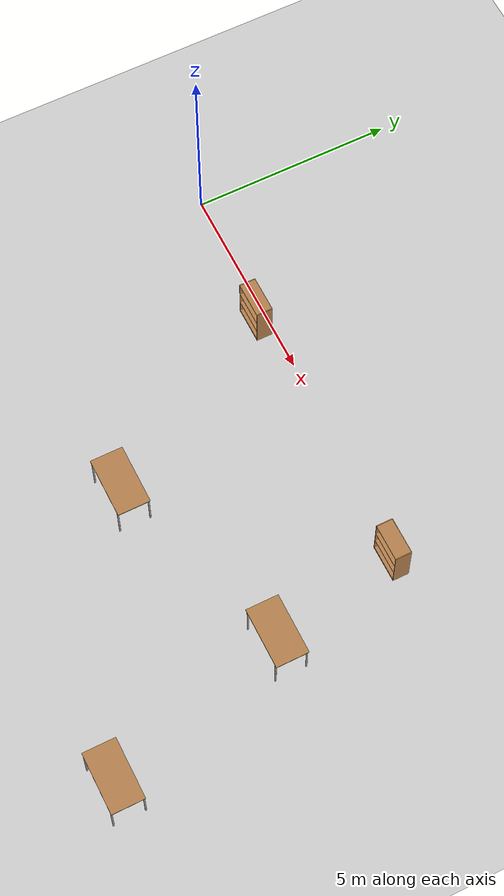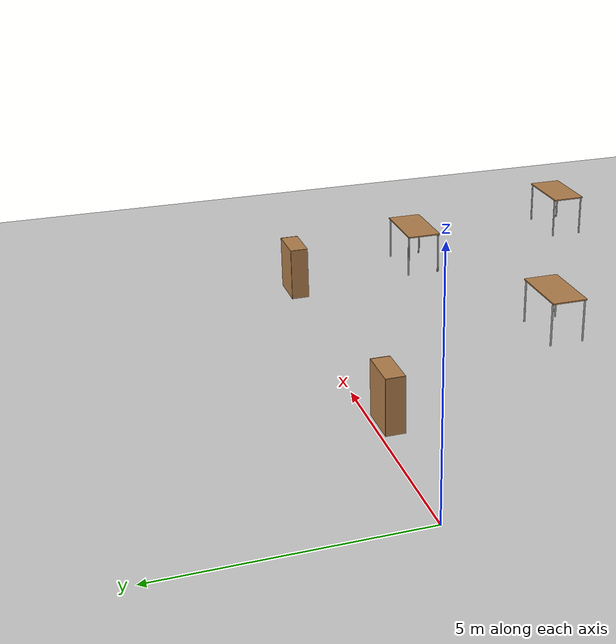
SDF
<sdf version="1.7">
 <world name="default">
  <model name="ground_plane">
   <static>1</static>
   <link name="link">
    <collision name="collision">
     <geometry><plane><normal>0 0 1</normal><size>100 100</size></plane></geometry>
     <surface>
      <contact><collide_bitmask>65535</collide_bitmask></contact>
      <friction><ode><mu>100</mu><mu2>50</mu2></ode></friction>
     </surface>
    </collision>
    <visual name="visual">
     <cast_shadows>0</cast_shadows>
     <geometry><plane><normal>0 0 1</normal><size>100 100</size></plane></geometry>
     <material>
      <script><uri>file://media/materials/scripts/gazebo.material</uri><name>Gazebo/Grey</name></script>
     </material>
    </visual>
   </link>
  </model>
  <model name="bookshelf">
   <static>1</static>
   <link name="link">
    <inertial><mass>1</mass></inertial>
    <collision name="back">
     <pose>0 0.005 0.6 0 -0 0</pose>
     <geometry><box><size>0.9 0.01 1.2</size></box></geometry>
    </collision>
    <visual name="visual1">
     <pose>0 0.005 0.6 0 -0 0</pose>
     <geometry><box><size>0.9 0.01 1.2</size></box></geometry>
     <material>
      <script><uri>file://media/materials/scripts/gazebo.material</uri><name>Gazebo/Wood</name></script>
     </material>
    </visual>
    <collision name="left_side">
     <pose>0.45 -0.195 0.6 0 -0 0</pose>
     <geometry><box><size>0.02 0.4 1.2</size></box></geometry>
    </collision>
    <visual name="visual2">
     <pose>0.45 -0.195 0.6 0 -0 0</pose>
     <geometry><box><size>0.02 0.4 1.2</size></box></geometry>
     <material>
      <script><uri>file://media/materials/scripts/gazebo.material</uri><name>Gazebo/Wood</name></script>
     </material>
    </visual>
    <collision name="right_side">
     <pose>-0.45 -0.195 0.6 0 -0 0</pose>
     <geometry><box><size>0.02 0.4 1.2</size></box></geometry>
    </collision>
    <visual name="visual3">
     <pose>-0.45 -0.195 0.6 0 -0 0</pose>
     <geometry><box><size>0.02 0.4 1.2</size></box></geometry>
     <material>
      <script><uri>file://media/materials/scripts/gazebo.material</uri><name>Gazebo/Wood</name></script>
     </material>
    </visual>
    <collision name="bottom">
     <pose>0 -0.195 0.03 0 -0 0</pose>
     <geometry><box><size>0.88 0.4 0.06</size></box></geometry>
    </collision>
    <visual name="visual4">
     <pose>0 -0.195 0.03 0 -0 0</pose>
     <geometry><box><size>0.88 0.4 0.06</size></box></geometry>
     <material>
      <script><uri>file://media/materials/scripts/gazebo.material</uri><name>Gazebo/Wood</name></script>
     </material>
    </visual>
    <collision name="top">
     <pose>0 -0.195 1.19 0 -0 0</pose>
     <geometry><box><size>0.88 0.4 0.02</size></box></geometry>
    </collision>
    <visual name="visual5">
     <pose>0 -0.195 1.19 0 -0 0</pose>
     <geometry><box><size>0.88 0.4 0.02</size></box></geometry>
     <material>
      <script><uri>file://media/materials/scripts/gazebo.material</uri><name>Gazebo/Wood</name></script>
     </material>
    </visual>
    <collision name="low_shelf">
     <pose>0 -0.195 0.43 0 -0 0</pose>
     <geometry><box><size>0.88 0.4 0.02</size></box></geometry>
    </collision>
    <visual name="visual6">
     <pose>0 -0.195 0.43 0 -0 0</pose>
     <geometry><box><size>0.88 0.4 0.02</size></box></geometry>
     <material>
      <script><uri>file://media/materials/scripts/gazebo.material</uri><name>Gazebo/Wood</name></script>
     </material>
    </visual>
    <collision name="high_shelf">
     <pose>0 -0.195 0.8 0 -0 0</pose>
     <geometry><box><size>0.88 0.4 0.02</size></box></geometry>
    </collision>
    <visual name="visual7">
     <pose>0 -0.195 0.8 0 -0 0</pose>
     <geometry><box><size>0.88 0.4 0.02</size></box></geometry>
     <material>
      <script><uri>file://media/materials/scripts/gazebo.material</uri><name>Gazebo/Wood</name></script>
     </material>
    </visual>
   </link>
   <pose>3.55052 -0.086326 0 0 -0 0</pose>
  </model>
  <model name="beer_1_clone">
   <link name="link">
    <pose>0 0 0.115 0 -0 0</pose>
    <inertial>
     <mass>0.39</mass>
     <inertia><ixx>0.00058</ixx><ixy>0</ixy><ixz>0</ixz><iyy>0.00058</iyy><iyz>0</iyz><izz>0.00019</izz></inertia>
    </inertial>
    <collision name="collision">
     <geometry><cylinder><radius>0.055</radius><length>0.23</length></cylinder></geometry>
    </collision>
    <visual name="visual">
     <geometry><cylinder><radius>0.055</radius><length>0.23</length></cylinder></geometry>
     <material>
      <script>
       <uri>model://beer/materials/scripts</uri>
       <uri>model://beer/materials/textures</uri>
       <name>Beer/Diffuse</name>
      </script>
     </material>
    </visual>
   </link>
   <pose>3.64996 -0.312496 0.44 3e-06 -0 -0.999656</pose>
  </model>
  <model name="table_1">
   <static>1</static>
   <link name="link">
    <collision name="surface">
     <pose>0 0 1 0 -0 0</pose>
     <geometry><box><size>1.5 0.8 0.03</size></box></geometry>
     <surface><friction><ode><mu>0.6</mu><mu2>0.6</mu2></ode></friction></surface>
    </collision>
    <visual name="visual1">
     <pose>0 0 1 0 -0 0</pose>
     <geometry><box><size>1.5 0.8 0.03</size></box></geometry>
     <material>
      <script><uri>file://media/materials/scripts/gazebo.material</uri><name>Gazebo/Wood</name></script>
     </material>
    </visual>
    <collision name="coll_front_left_leg3">
     <pose>0.68 0.38 0.5 0 -0 0</pose>
     <geometry><cylinder><radius>0.02</radius><length>1</length></cylinder></geometry>
    </collision>
    <visual name="front_left_leg3">
     <pose>0.68 0.38 0.5 0 -0 0</pose>
     <geometry><cylinder><radius>0.02</radius><length>1</length></cylinder></geometry>
     <material>
      <script><uri>file://media/materials/scripts/gazebo.material</uri><name>Gazebo/Grey</name></script>
     </material>
    </visual>
    <collision name="coll_front_right_leg3">
     <pose>0.68 -0.38 0.5 0 -0 0</pose>
     <geometry><cylinder><radius>0.02</radius><length>1</length></cylinder></geometry>
    </collision>
    <visual name="front_right_leg3">
     <pose>0.68 -0.38 0.5 0 -0 0</pose>
     <geometry><cylinder><radius>0.02</radius><length>1</length></cylinder></geometry>
     <material>
      <script><uri>file://media/materials/scripts/gazebo.material</uri><name>Gazebo/Grey</name></script>
     </material>
    </visual>
    <collision name="coll_back_right_leg3">
     <pose>-0.68 -0.38 0.5 0 -0 0</pose>
     <geometry><cylinder><radius>0.02</radius><length>1</length></cylinder></geometry>
    </collision>
    <visual name="back_right_leg3">
     <pose>-0.68 -0.38 0.5 0 -0 0</pose>
     <geometry><cylinder><radius>0.02</radius><length>1</length></cylinder></geometry>
     <material>
      <script><uri>file://media/materials/scripts/gazebo.material</uri><name>Gazebo/Grey</name></script>
     </material>
    </visual>
    <collision name="coll_back_left_leg3">
     <pose>-0.68 0.38 0.5 0 -0 0</pose>
     <geometry><cylinder><radius>0.02</radius><length>1</length></cylinder></geometry>
    </collision>
    <visual name="back_left_leg3">
     <pose>-0.68 0.38 0.5 0 -0 0</pose>
     <geometry><cylinder><radius>0.02</radius><length>1</length></cylinder></geometry>
     <material>
      <script><uri>file://media/materials/scripts/gazebo.material</uri><name>Gazebo/Grey</name></script>
     </material>
    </visual>
   </link>
   <pose>6.35121 -5.09185 0 0 -0 0</pose>
  </model>
  <model name="table_2">
   <static>1</static>
   <link name="link">
    <collision name="surface">
     <pose>0 0 1 0 -0 0</pose>
     <geometry><box><size>1.5 0.8 0.03</size></box></geometry>
     <surface><friction><ode><mu>0.6</mu><mu2>0.6</mu2></ode></friction></surface>
    </collision>
    <visual name="visual1">
     <pose>0 0 1 0 -0 0</pose>
     <geometry><box><size>1.5 0.8 0.03</size></box></geometry>
     <material>
      <script><uri>file://media/materials/scripts/gazebo.material</uri><name>Gazebo/Wood</name></script>
     </material>
    </visual>
    <collision name="coll_front_left_leg4">
     <pose>0.68 0.38 0.5 0 -0 0</pose>
     <geometry><cylinder><radius>0.02</radius><length>1</length></cylinder></geometry>
    </collision>
    <visual name="front_left_leg4">
     <pose>0.68 0.38 0.5 0 -0 0</pose>
     <geometry><cylinder><radius>0.02</radius><length>1</length></cylinder></geometry>
     <material>
      <script><uri>file://media/materials/scripts/gazebo.material</uri><name>Gazebo/Grey</name></script>
     </material>
    </visual>
    <collision name="coll_front_right_leg4">
     <pose>0.68 -0.38 0.5 0 -0 0</pose>
     <geometry><cylinder><radius>0.02</radius><length>1</length></cylinder></geometry>
    </collision>
    <visual name="front_right_leg4">
     <pose>0.68 -0.38 0.5 0 -0 0</pose>
     <geometry><cylinder><radius>0.02</radius><length>1</length></cylinder></geometry>
     <material>
      <script><uri>file://media/materials/scripts/gazebo.material</uri><name>Gazebo/Grey</name></script>
     </material>
    </visual>
    <collision name="coll_back_right_leg4">
     <pose>-0.68 -0.38 0.5 0 -0 0</pose>
     <geometry><cylinder><radius>0.02</radius><length>1</length></cylinder></geometry>
    </collision>
    <visual name="back_right_leg4">
     <pose>-0.68 -0.38 0.5 0 -0 0</pose>
     <geometry><cylinder><radius>0.02</radius><length>1</length></cylinder></geometry>
     <material>
      <script><uri>file://media/materials/scripts/gazebo.material</uri><name>Gazebo/Grey</name></script>
     </material>
    </visual>
    <collision name="coll_back_left_leg4">
     <pose>-0.68 0.38 0.5 0 -0 0</pose>
     <geometry><cylinder><radius>0.02</radius><length>1</length></cylinder></geometry>
    </collision>
    <visual name="back_left_leg4">
     <pose>-0.68 0.38 0.5 0 -0 0</pose>
     <geometry><cylinder><radius>0.02</radius><length>1</length></cylinder></geometry>
     <material>
      <script><uri>file://media/materials/scripts/gazebo.material</uri><name>Gazebo/Grey</name></script>
     </material>
    </visual>
   </link>
   <pose>12.5081 -8.10505 0 0 -0 0</pose>
  </model>
  <model name="table_3">
   <static>1</static>
   <link name="link">
    <collision name="surface">
     <pose>0 0 1 0 -0 0</pose>
     <geometry><box><size>1.5 0.8 0.03</size></box></geometry>
     <surface><friction><ode><mu>0.6</mu><mu2>0.6</mu2></ode></friction></surface>
    </collision>
    <visual name="visual1">
     <pose>0 0 1 0 -0 0</pose>
     <geometry><box><size>1.5 0.8 0.03</size></box></geometry>
     <material>
      <script><uri>file://media/materials/scripts/gazebo.material</uri><name>Gazebo/Wood</name></script>
     </material>
    </visual>
    <collision name="coll_front_left_leg5">
     <pose>0.68 0.38 0.5 0 -0 0</pose>
     <geometry><cylinder><radius>0.02</radius><length>1</length></cylinder></geometry>
    </collision>
    <visual name="front_left_leg5">
     <pose>0.68 0.38 0.5 0 -0 0</pose>
     <geometry><cylinder><radius>0.02</radius><length>1</length></cylinder></geometry>
     <material>
      <script><uri>file://media/materials/scripts/gazebo.material</uri><name>Gazebo/Grey</name></script>
     </material>
    </visual>
    <collision name="coll_front_right_leg5">
     <pose>0.68 -0.38 0.5 0 -0 0</pose>
     <geometry><cylinder><radius>0.02</radius><length>1</length></cylinder></geometry>
    </collision>
    <visual name="front_right_leg5">
     <pose>0.68 -0.38 0.5 0 -0 0</pose>
     <geometry><cylinder><radius>0.02</radius><length>1</length></cylinder></geometry>
     <material>
      <script><uri>file://media/materials/scripts/gazebo.material</uri><name>Gazebo/Grey</name></script>
     </material>
    </visual>
    <collision name="coll_back_right_leg5">
     <pose>-0.68 -0.38 0.5 0 -0 0</pose>
     <geometry><cylinder><radius>0.02</radius><length>1</length></cylinder></geometry>
    </collision>
    <visual name="back_right_leg5">
     <pose>-0.68 -0.38 0.5 0 -0 0</pose>
     <geometry><cylinder><radius>0.02</radius><length>1</length></cylinder></geometry>
     <material>
      <script><uri>file://media/materials/scripts/gazebo.material</uri><name>Gazebo/Grey</name></script>
     </material>
    </visual>
    <collision name="coll_back_left_leg5">
     <pose>-0.68 0.38 0.5 0 -0 0</pose>
     <geometry><cylinder><radius>0.02</radius><length>1</length></cylinder></geometry>
    </collision>
    <visual name="back_left_leg5">
     <pose>-0.68 0.38 0.5 0 -0 0</pose>
     <geometry><cylinder><radius>0.02</radius><length>1</length></cylinder></geometry>
     <material>
      <script><uri>file://media/materials/scripts/gazebo.material</uri><name>Gazebo/Grey</name></script>
     </material>
    </visual>
   </link>
   <pose>11.1465 -3.55339 0 0 -0 0</pose>
  </model>
  <model name="bookshelf_0">
   <static>1</static>
   <link name="link">
    <inertial><mass>1</mass></inertial>
    <collision name="back">
     <pose>0 0.005 0.6 0 -0 0</pose>
     <geometry><box><size>0.9 0.01 1.2</size></box></geometry>
    </collision>
    <visual name="visual1">
     <pose>0 0.005 0.6 0 -0 0</pose>
     <geometry><box><size>0.9 0.01 1.2</size></box></geometry>
     <material>
      <script><uri>file://media/materials/scripts/gazebo.material</uri><name>Gazebo/Wood</name></script>
     </material>
    </visual>
    <collision name="left_side">
     <pose>0.45 -0.195 0.6 0 -0 0</pose>
     <geometry><box><size>0.02 0.4 1.2</size></box></geometry>
    </collision>
    <visual name="visual2">
     <pose>0.45 -0.195 0.6 0 -0 0</pose>
     <geometry><box><size>0.02 0.4 1.2</size></box></geometry>
     <material>
      <script><uri>file://media/materials/scripts/gazebo.material</uri><name>Gazebo/Wood</name></script>
     </material>
    </visual>
    <collision name="right_side">
     <pose>-0.45 -0.195 0.6 0 -0 0</pose>
     <geometry><box><size>0.02 0.4 1.2</size></box></geometry>
    </collision>
    <visual name="visual3">
     <pose>-0.45 -0.195 0.6 0 -0 0</pose>
     <geometry><box><size>0.02 0.4 1.2</size></box></geometry>
     <material>
      <script><uri>file://media/materials/scripts/gazebo.material</uri><name>Gazebo/Wood</name></script>
     </material>
    </visual>
    <collision name="bottom">
     <pose>0 -0.195 0.03 0 -0 0</pose>
     <geometry><box><size>0.88 0.4 0.06</size></box></geometry>
    </collision>
    <visual name="visual4">
     <pose>0 -0.195 0.03 0 -0 0</pose>
     <geometry><box><size>0.88 0.4 0.06</size></box></geometry>
     <material>
      <script><uri>file://media/materials/scripts/gazebo.material</uri><name>Gazebo/Wood</name></script>
     </material>
    </visual>
    <collision name="top">
     <pose>0 -0.195 1.19 0 -0 0</pose>
     <geometry><box><size>0.88 0.4 0.02</size></box></geometry>
    </collision>
    <visual name="visual5">
     <pose>0 -0.195 1.19 0 -0 0</pose>
     <geometry><box><size>0.88 0.4 0.02</size></box></geometry>
     <material>
      <script><uri>file://media/materials/scripts/gazebo.material</uri><name>Gazebo/Wood</name></script>
     </material>
    </visual>
    <collision name="low_shelf">
     <pose>0 -0.195 0.43 0 -0 0</pose>
     <geometry><box><size>0.88 0.4 0.02</size></box></geometry>
    </collision>
    <visual name="visual6">
     <pose>0 -0.195 0.43 0 -0 0</pose>
     <geometry><box><size>0.88 0.4 0.02</size></box></geometry>
     <material>
      <script><uri>file://media/materials/scripts/gazebo.material</uri><name>Gazebo/Wood</name></script>
     </material>
    </visual>
    <collision name="high_shelf">
     <pose>0 -0.195 0.8 0 -0 0</pose>
     <geometry><box><size>0.88 0.4 0.02</size></box></geometry>
    </collision>
    <visual name="visual7">
     <pose>0 -0.195 0.8 0 -0 0</pose>
     <geometry><box><size>0.88 0.4 0.02</size></box></geometry>
     <material>
      <script><uri>file://media/materials/scripts/gazebo.material</uri><name>Gazebo/Wood</name></script>
     </material>
    </visual>
   </link>
   <pose>10.4349 -0.111352 0 0 -0 0</pose>
  </model>
 </world>
</sdf>
